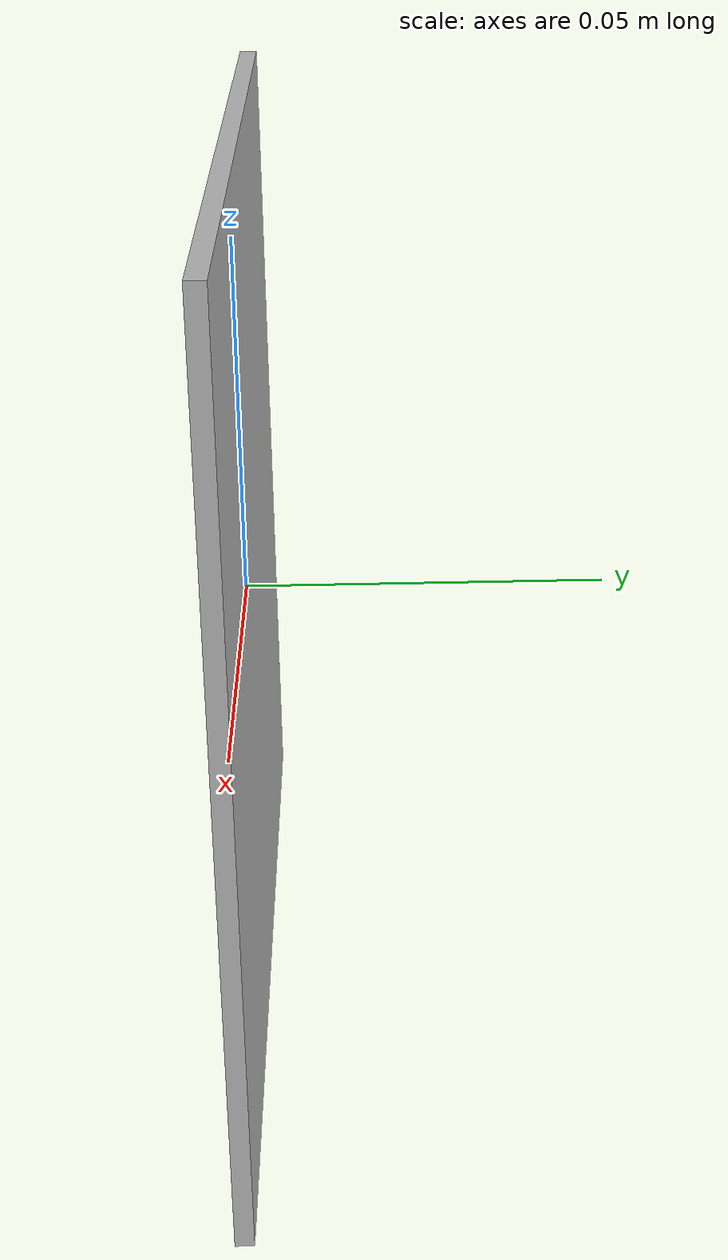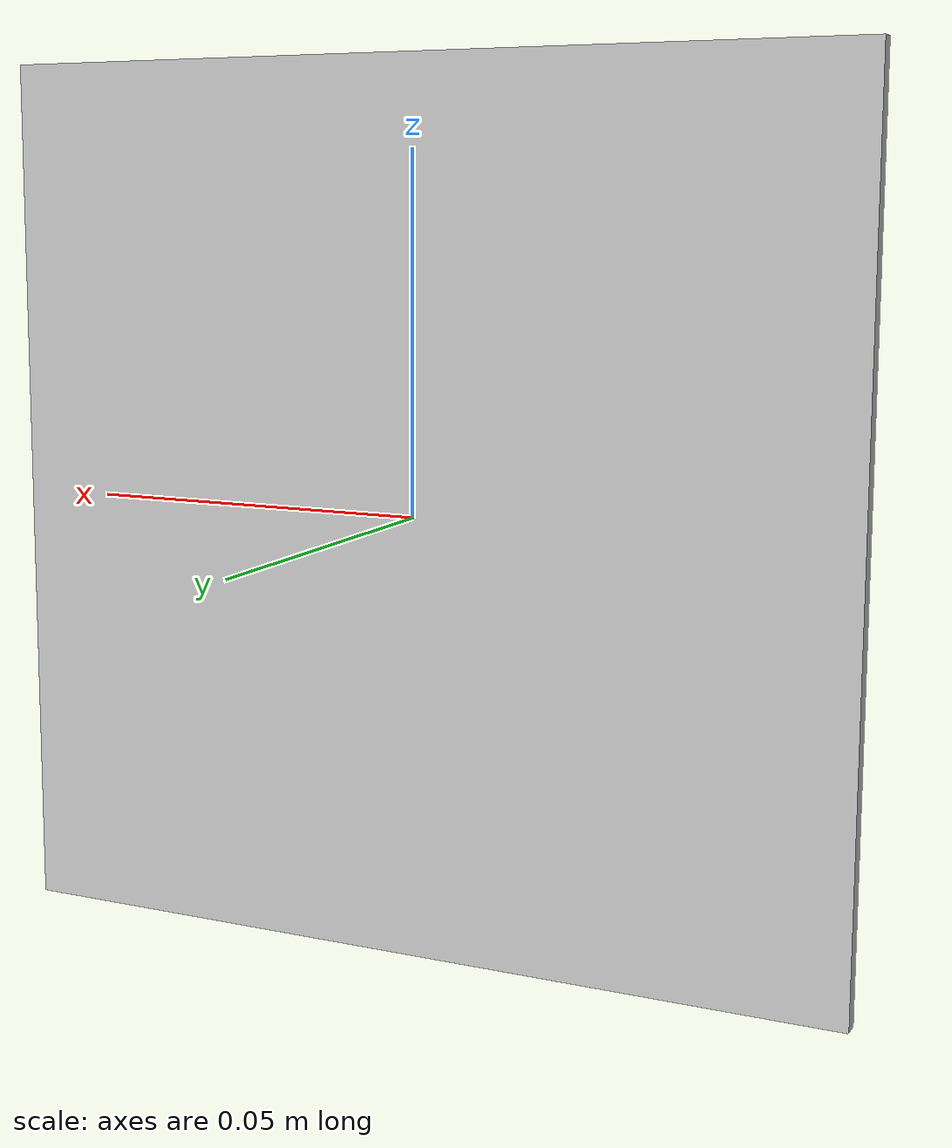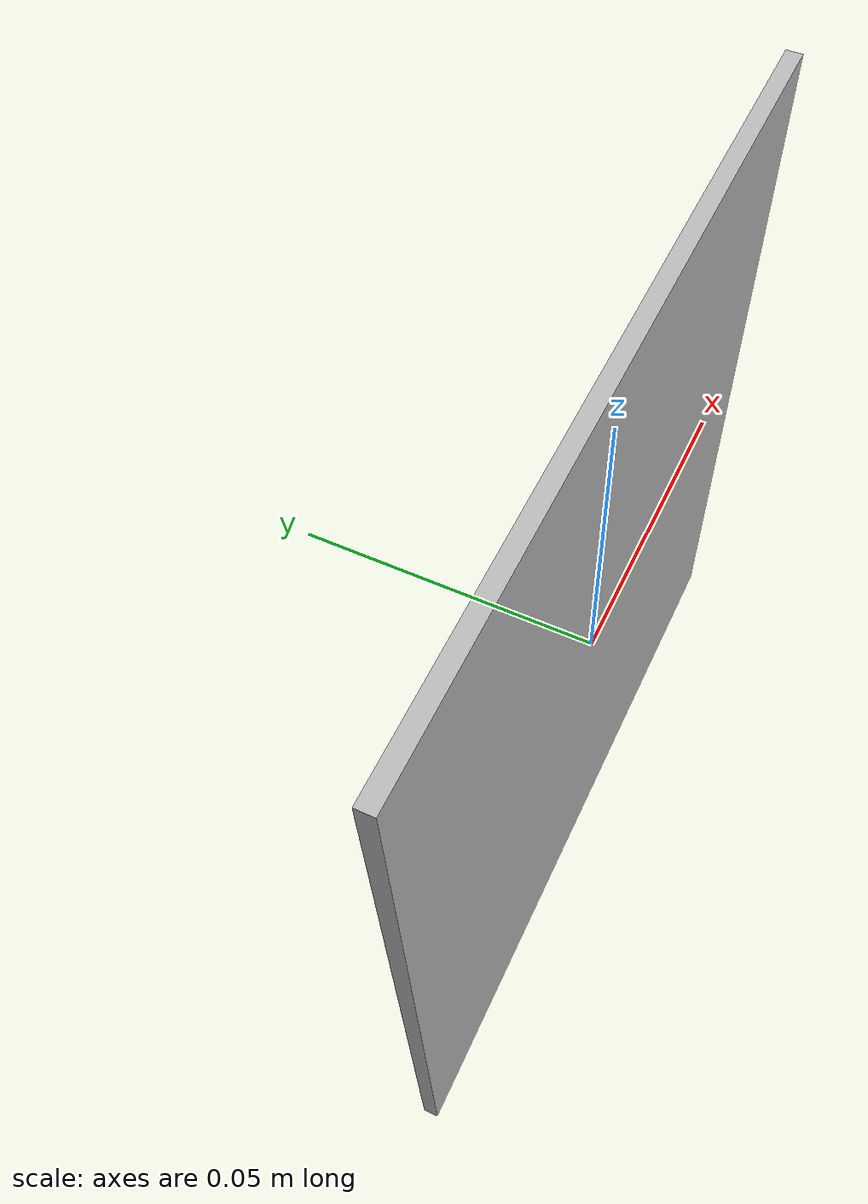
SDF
<?xml version="1.0"?>
<sdf version="1.6">
  <model name="sudden_gorani">
    <static>true</static>

    <link name="sign_link">
      <!-- 표지판 본체 -->
      <visual name="sign_visual">
        <pose>0 0 0 0 0 0</pose>
        <geometry>
          <box>
            <size>0.125 0.0025 0.125</size>
          </box>
        </geometry>
        <material>
          <script>
            <uri>model://sudden_gorani/materials/scripts</uri>
            <uri>model://sudden_gorani/materials/textures</uri>
            <name>Gazebo/sudden_gorani</name>
          </script>
        </material>
      </visual>
    </link>
  </model>
</sdf>
